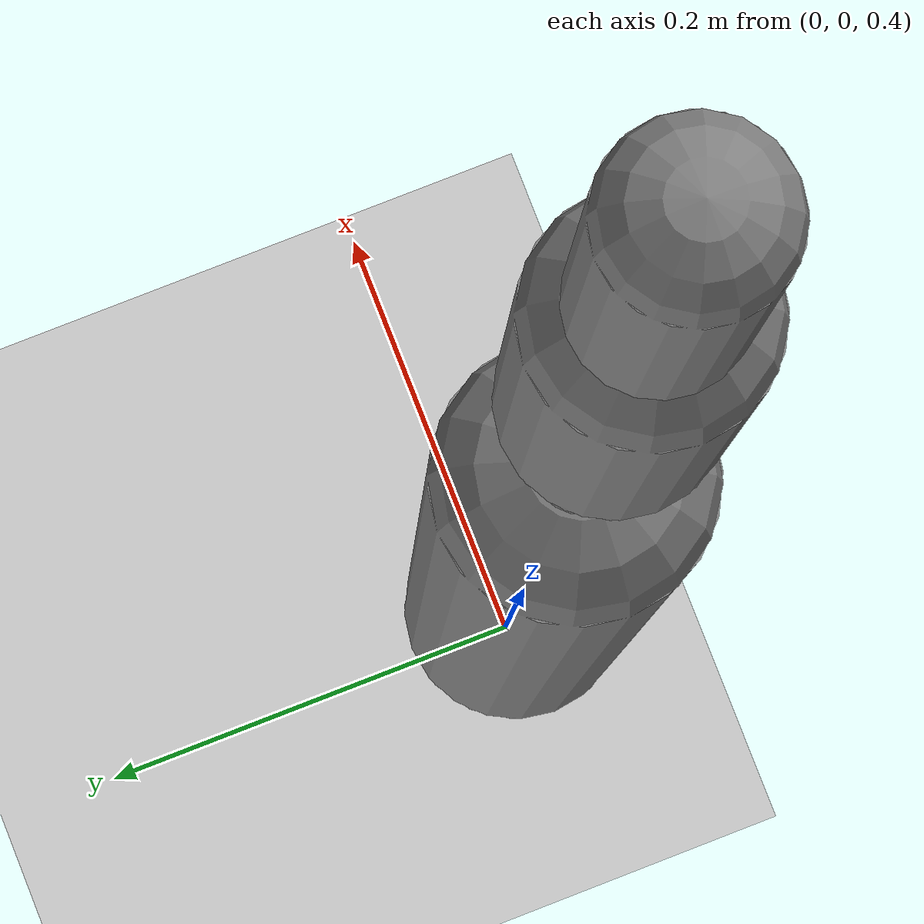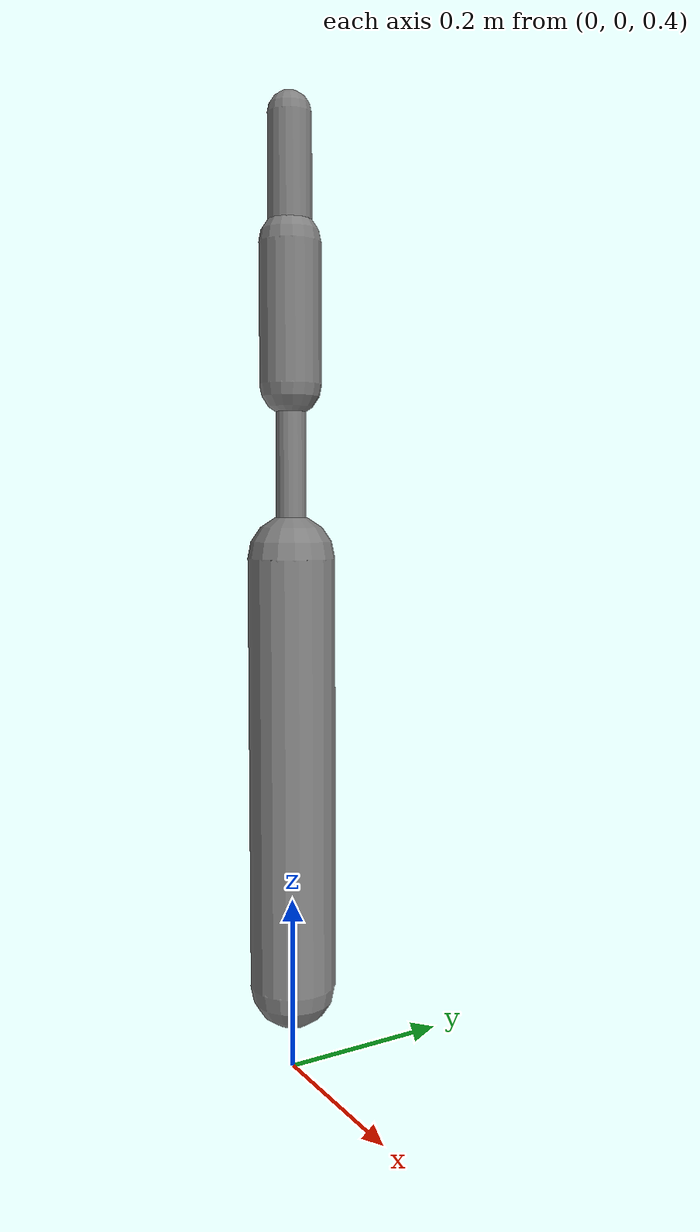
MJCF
<?xml version='1.0' encoding='UTF-8'?>
<mujoco model="RobotModel">
  <option gravity="0 0 -9.81" timestep="0.002" solver="CG" iterations="500" integrator="Euler"/>
  <worldbody>
    <geom name="Floor" type="plane" size="10 10 0.1" pos="0 0 0" rgba="0.8 0.8 0.8 1"/>
    <body name="Limb0" pos="0 0 0.5">
      <geom type="capsule" fromto="0 0 0 0 0 0.5" size="0.05" density="1000" contype="0" conaffinity="0"/>
      <body name="Limb0_79ed06b3" pos="0 0 0.5">
        <geom type="capsule" fromto="0 0 0 0 0 0.2810492382374373" size="0.012149541249355248" density="800" contype="0" conaffinity="0"/>
        <joint name="Joint_Limb0_Limb0_79ed06b3_0" type="hinge" axis="1 0 0" range="-60 60"/>
      </body>
      <body name="Limb1_79ed06b3" pos="0 0 0.5">
        <geom type="capsule" fromto="0 0 0 0 0 0.195633939390632" size="0.017215800225730986" density="800" contype="0" conaffinity="0"/>
        <body name="Limb2_79ed06b3" pos="0 0 0.195633939390632">
          <geom type="capsule" fromto="0 0 0 0 0 0.15623468477638908" size="0.03519532371924706" density="800" contype="0" conaffinity="0"/>
          <body name="Limb3_79ed06b3" pos="0 0 0.15623468477638908">
            <geom type="capsule" fromto="0 0 0 0 0 0.1396605953744436" size="0.024900606433775577" density="800" contype="0" conaffinity="0"/>
            <joint name="Joint_Limb2_79ed06b3_Limb3_79ed06b3_0" type="hinge" axis="1 0 0" range="-60 60"/>
          </body>
          <joint name="Joint_Limb1_79ed06b3_Limb2_79ed06b3_0" type="hinge" axis="1 0 0" range="-60 60"/>
        </body>
        <joint name="Joint_Limb0_Limb1_79ed06b3_0" type="hinge" axis="0 1 0" range="-60 60"/>
      </body>
    </body>
  </worldbody>
  <actuator>
    <position name="position_Actuator_Joint_Limb0_Limb0_79ed06b3_0" joint="Joint_Limb0_Limb0_79ed06b3_0" gear="1.0"/>
    <position name="position_Actuator_Joint_Limb0_Limb1_79ed06b3_0" joint="Joint_Limb0_Limb1_79ed06b3_0" gear="1.0"/>
    <position name="position_Actuator_Joint_Limb1_79ed06b3_Limb2_79ed06b3_0" joint="Joint_Limb1_79ed06b3_Limb2_79ed06b3_0" gear="1.0"/>
    <position name="position_Actuator_Joint_Limb2_79ed06b3_Limb3_79ed06b3_0" joint="Joint_Limb2_79ed06b3_Limb3_79ed06b3_0" gear="1.0"/>
  </actuator>
</mujoco>
